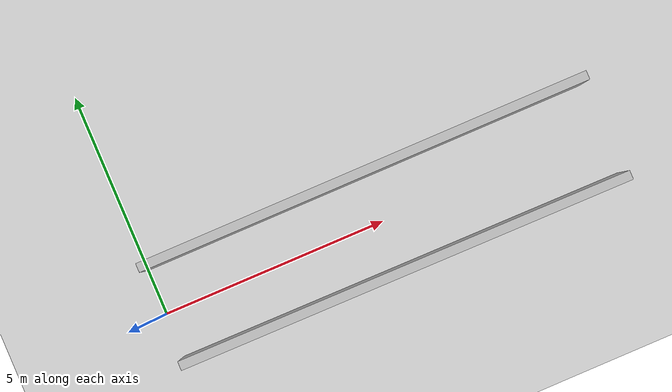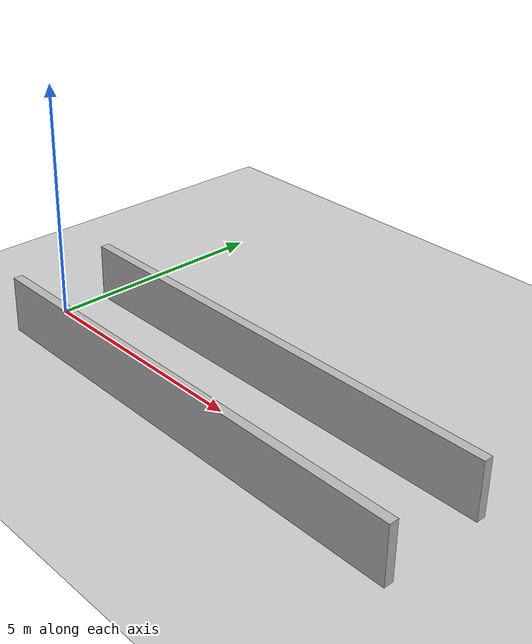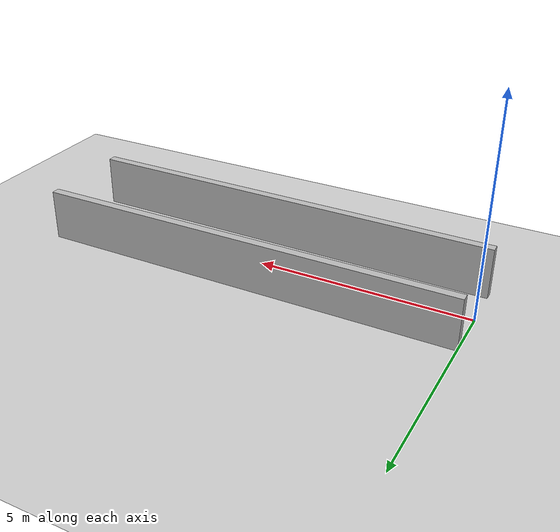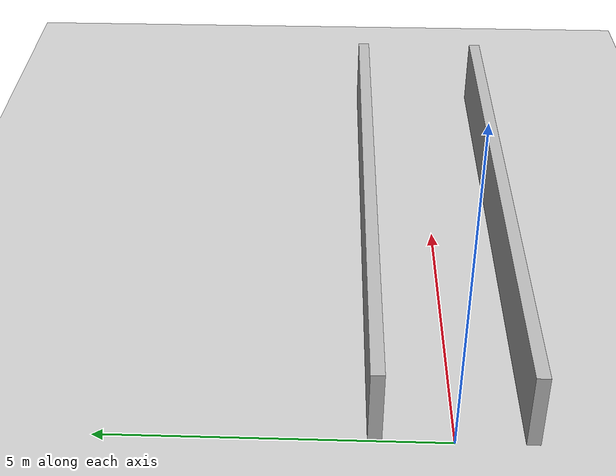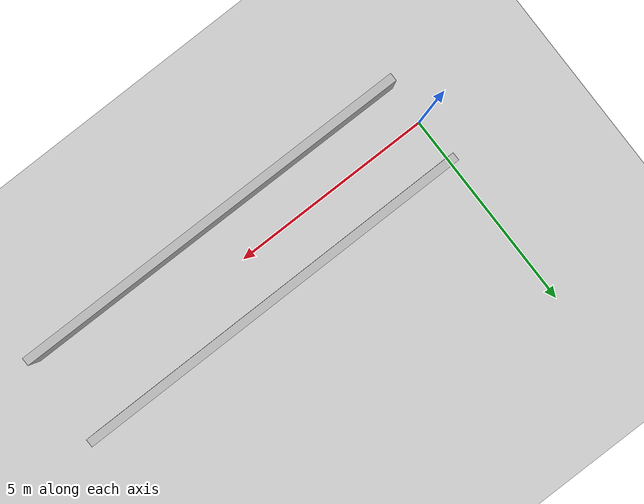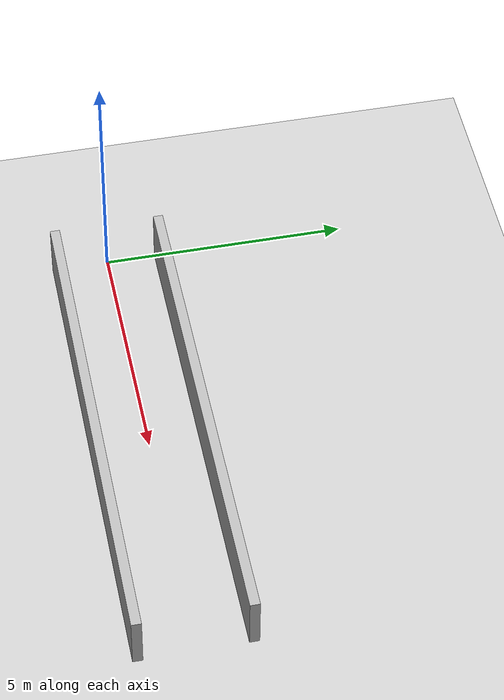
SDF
<?xml version="1.0"?>
<sdf version="1.6">
  <world name="v2-04f-corridor-s4809">
    <gravity>0 0 -9.81</gravity>
    <physics name="v2_deterministic" type="ode">
      <max_step_size>0.002</max_step_size>
      <real_time_update_rate>500</real_time_update_rate>
    </physics>
    <include>
      <uri>model://sun</uri>
    </include>
    <include>
      <uri>model://ground_plane</uri>
    </include>
    <model name="corridor-left">
      <static>true</static>
      <pose>4.989605063 1.108992187 0.600000000 0 0 0.001475397</pose>
      <link name="link">
        <collision name="collision">
          <geometry>
            <box>
              <size>10.000000 0.200000 1.200000</size>
            </box>
          </geometry>
        </collision>
        <visual name="visual">
          <geometry>
            <box>
              <size>10.000000 0.200000 1.200000</size>
            </box>
          </geometry>
        </visual>
      </link>
    </model>
    <model name="corridor-right">
      <static>true</static>
      <pose>4.997732917 -1.089054937 0.600000000 0 0 -0.003707545</pose>
      <link name="link">
        <collision name="collision">
          <geometry>
            <box>
              <size>10.000000 0.200000 1.200000</size>
            </box>
          </geometry>
        </collision>
        <visual name="visual">
          <geometry>
            <box>
              <size>10.000000 0.200000 1.200000</size>
            </box>
          </geometry>
        </visual>
      </link>
    </model>
  </world>
</sdf>
